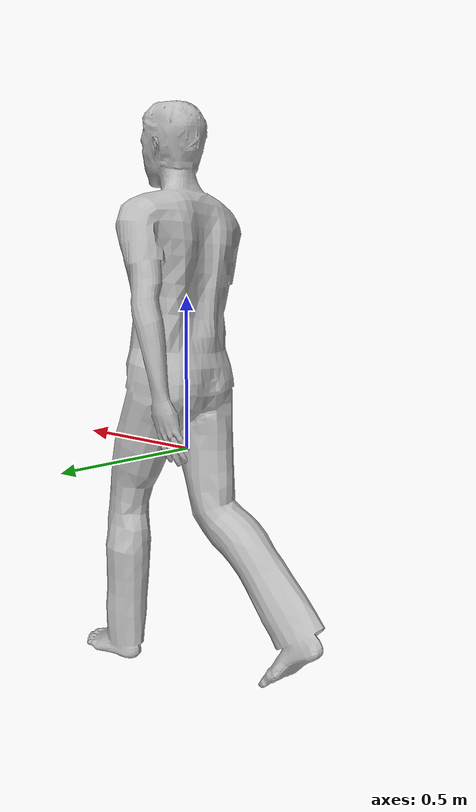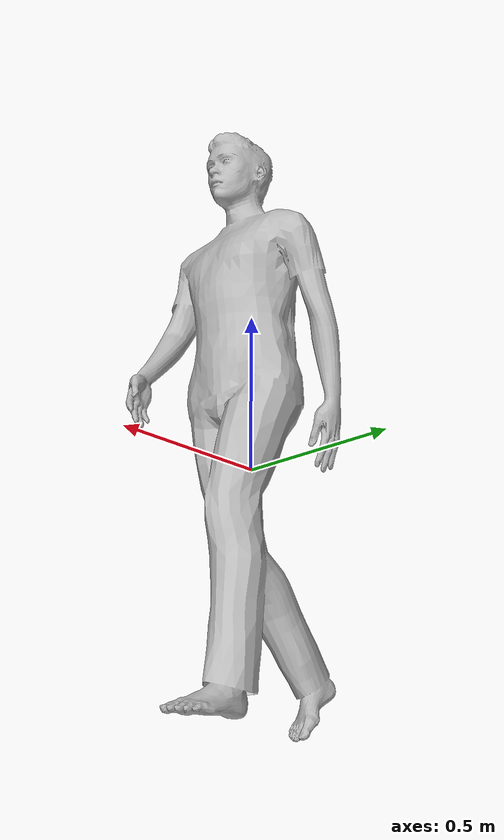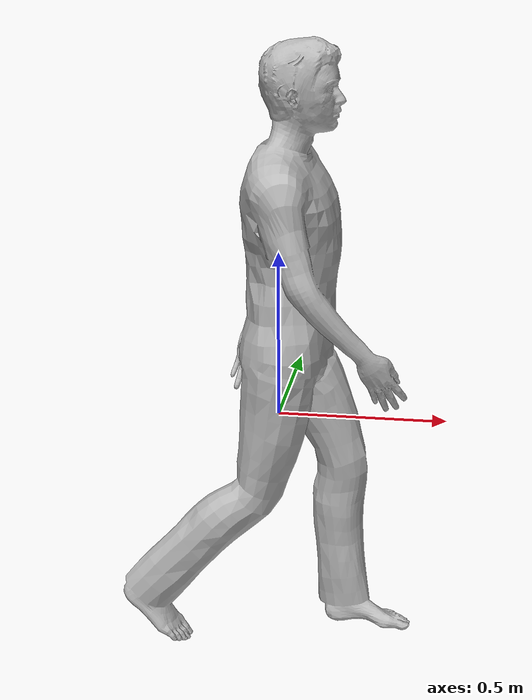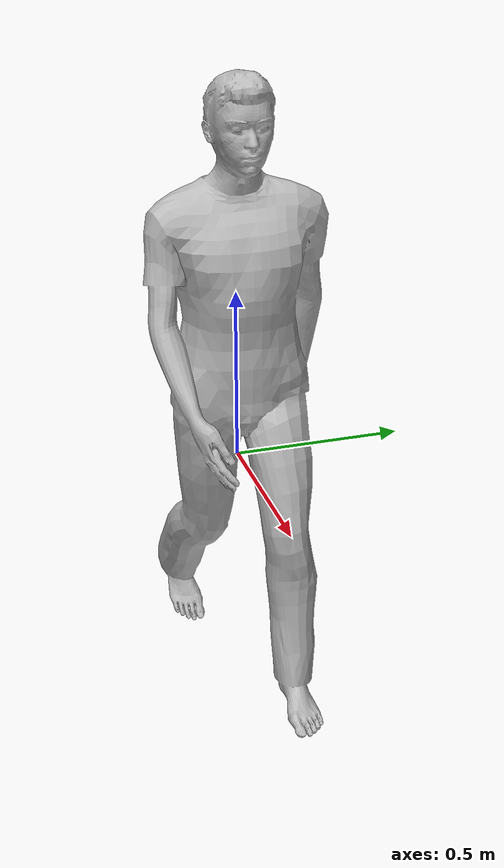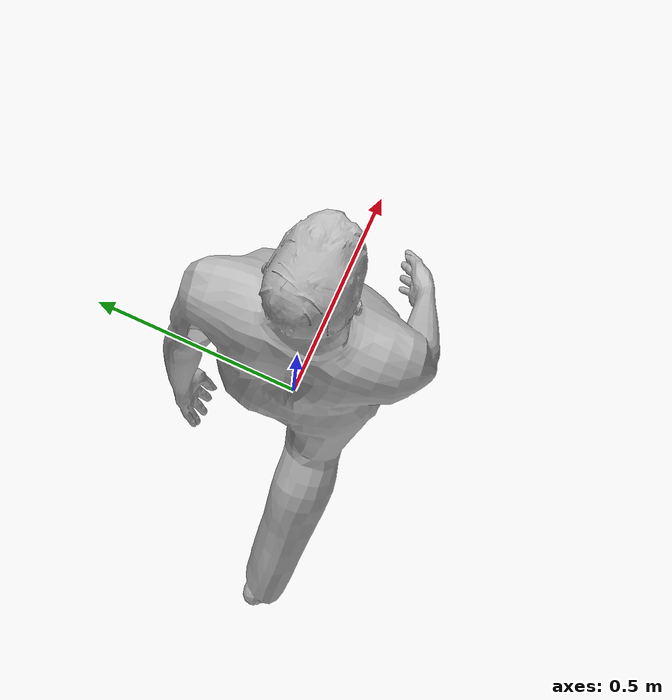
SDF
<?xml version="1.0" ?>
<sdf version="1.5">

  <model name="actor_model">
  <link name="link">
    <gravity>0</gravity>
    <inertial>
      <pose>0 0 0 0 0 0</pose>
      <mass>70.0</mass>
      <inertia>
      <ixx>0</ixx>
      <ixy>0</ixy>
      <ixz>0</ixz>
      <iyy>0</iyy>
      <iyz>0</iyz>
      <izz>0</izz>
      </inertia>
    </inertial>

    <collision name="person">
      <pose>0 0 -0.78 0 0 1.57</pose>
      <geometry>
        <mesh>
          <uri>model://person_walking/meshes/walking.dae</uri>
        </mesh>
      </geometry>
    </collision>

    <visual name="visual">
      <pose>0 0 -0.78 0 0 1.57</pose>
      <geometry>
        <mesh>
          <uri>model://person_walking/meshes/walking.dae</uri>
        </mesh>
      </geometry>
    </visual>
  </link>
  </model>

</sdf>
